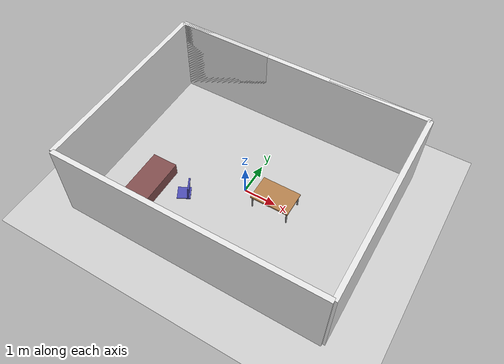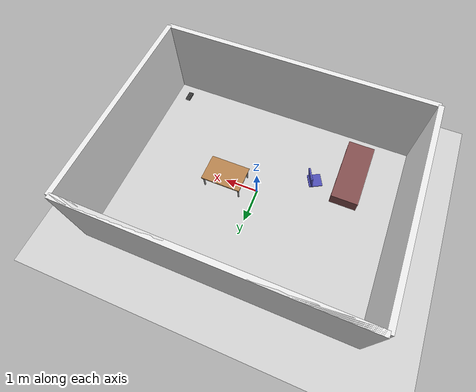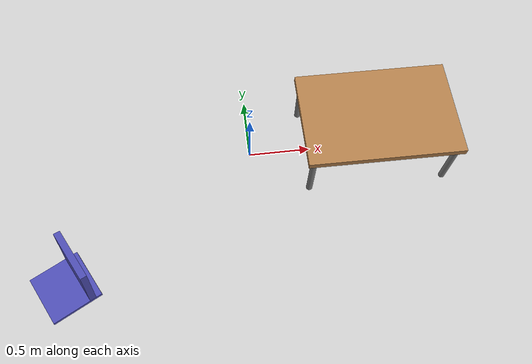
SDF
<?xml version="1.0" ?>
<sdf version="1.7">
  <world name="sweeping_robot_world">

    <physics type="ode">
      <real_time_update_rate>1000</real_time_update_rate>
      <max_step_size>0.001</max_step_size>
      <real_time_factor>1</real_time_factor>
      <ode>
        <solver>
          <type>quick</type>
          <iters>50</iters>
          <precon_iters>0</precon_iters>
          <sor>1.3</sor>
          <use_dynamic_moi_rescaling>false</use_dynamic_moi_rescaling>
        </solver>
        <constraints>
          <cfm>0.0</cfm>
          <erp>0.2</erp>
          <contact_max_correcting_vel>100</contact_max_correcting_vel>
          <contact_surface_layer>0.001</contact_surface_layer>
        </constraints>
      </ode>
    </physics>

    <scene>
      <ambient>0.4 0.4 0.4 1.0</ambient>
      <background>0.7 0.7 0.7 1.0</background>
      <shadows>true</shadows>
    </scene>

    <gui fullscreen="0">
      <camera name="user_camera">
        <pose>4.0 3.0 2.5 0 0.3 2.4</pose>
        <view_controller>orbit</view_controller>
      </camera>
    </gui>

    <!-- Global light -->
    <light type="directional" name="sun">
      <pose>0 0 10 0 0 0</pose>
      <diffuse>0.8 0.8 0.8 1.0</diffuse>
      <specular>0.2 0.2 0.2 1.0</specular>
      <direction>-0.5 0.1 -1.0</direction>
      <cast_shadows>true</cast_shadows>
    </light>

    <!-- Ground plane -->
    <include>
      <uri>model://ground_plane</uri>
      <pose>0 0 0 0 0 0</pose>
    </include>

    <!-- ==================== ROOM STRUCTURE ==================== -->

    <!-- Room dimensions: 8m x 6m with 2.5m ceiling -->

    <!-- Wall 1: Front wall (y = 3) -->
    <model name="wall_front">
      <pose>0 3.0 1.25 0 0 0</pose>
      <static>true</static>
      <link name="wall">
        <collision name="collision">
          <geometry>
            <box>
              <size>8.0 0.15 2.5</size>
            </box>
          </geometry>
        </collision>
        <visual name="visual">
          <geometry>
            <box>
              <size>8.0 0.15 2.5</size>
            </box>
          </geometry>
          <material>
            <ambient>0.8 0.8 0.8 1.0</ambient>
            <diffuse>0.9 0.9 0.9 1.0</diffuse>
          </material>
        </visual>
      </link>
    </model>

    <!-- Wall 2: Back wall (y = -3) -->
    <model name="wall_back">
      <pose>0 -3.0 1.25 0 0 0</pose>
      <static>true</static>
      <link name="wall">
        <collision name="collision">
          <geometry>
            <box>
              <size>8.0 0.15 2.5</size>
            </box>
          </geometry>
        </collision>
        <visual name="visual">
          <geometry>
            <box>
              <size>8.0 0.15 2.5</size>
            </box>
          </geometry>
          <material>
            <ambient>0.8 0.8 0.8 1.0</ambient>
            <diffuse>0.9 0.9 0.9 1.0</diffuse>
          </material>
        </visual>
      </link>
    </model>

    <!-- Wall 3: Left wall (x = -4) -->
    <model name="wall_left">
      <pose>-4.0 0 1.25 0 0 1.5708</pose>
      <static>true</static>
      <link name="wall">
        <collision name="collision">
          <geometry>
            <box>
              <size>6.0 0.15 2.5</size>
            </box>
          </geometry>
        </collision>
        <visual name="visual">
          <geometry>
            <box>
              <size>6.0 0.15 2.5</size>
            </box>
          </geometry>
          <material>
            <ambient>0.8 0.8 0.8 1.0</ambient>
            <diffuse>0.9 0.9 0.9 1.0</diffuse>
          </material>
        </visual>
      </link>
    </model>

    <!-- Wall 4: Right wall (x = 4) -->
    <model name="wall_right">
      <pose>4.0 0 1.25 0 0 1.5708</pose>
      <static>true</static>
      <link name="wall">
        <collision name="collision">
          <geometry>
            <box>
              <size>6.0 0.15 2.5</size>
            </box>
          </geometry>
        </collision>
        <visual name="visual">
          <geometry>
            <box>
              <size>6.0 0.15 2.5</size>
            </box>
          </geometry>
          <material>
            <ambient>0.8 0.8 0.8 1.0</ambient>
            <diffuse>0.9 0.9 0.9 1.0</diffuse>
          </material>
        </visual>
      </link>
    </model>

    <!-- Doorway opening in front wall (1.0m wide, centered) -->
    <!-- Note: Using two wall segments to create a gap -->

    <!-- Wall front-left section -->
    <model name="wall_front_left">
      <pose>-2.5 3.0 1.25 0 0 0</pose>
      <static>true</static>
      <link name="wall">
        <collision name="collision">
          <geometry>
            <box>
              <size>3.0 0.15 2.5</size>
            </box>
          </geometry>
        </collision>
        <visual name="visual">
          <geometry>
            <box>
              <size>3.0 0.15 2.5</size>
            </box>
          </geometry>
          <material>
            <ambient>0.7 0.7 0.7 1.0</ambient>
            <diffuse>0.85 0.85 0.85 1.0</diffuse>
          </material>
        </visual>
      </link>
    </model>

    <!-- Wall front-right section -->
    <model name="wall_front_right">
      <pose>2.5 3.0 1.25 0 0 0</pose>
      <static>true</static>
      <link name="wall">
        <collision name="collision">
          <geometry>
            <box>
              <size>3.0 0.15 2.5</size>
            </box>
          </geometry>
        </collision>
        <visual name="visual">
          <geometry>
            <box>
              <size>3.0 0.15 2.5</size>
            </box>
          </geometry>
          <material>
            <ambient>0.7 0.7 0.7 1.0</ambient>
            <diffuse>0.85 0.85 0.85 1.0</diffuse>
          </material>
        </visual>
      </link>
    </model>

    <!-- ==================== FURNITURE ==================== -->

    <!-- Table (center of room) -->
    <model name="table">
      <pose>1.0 0 0.45 0 0 0</pose>
      <static>true</static>
      <link name="table_top">
        <collision name="collision">
          <geometry>
            <box>
              <size>1.2 0.8 0.05</size>
            </box>
          </geometry>
        </collision>
        <visual name="visual">
          <geometry>
            <box>
              <size>1.2 0.8 0.05</size>
            </box>
          </geometry>
          <material>
            <ambient>0.6 0.4 0.2 1.0</ambient>
            <diffuse>0.7 0.5 0.3 1.0</diffuse>
          </material>
        </visual>
      </link>
      <link name="leg_1">
        <pose>-0.55 -0.35 -0.40 0 0 0</pose>
        <collision name="collision">
          <geometry>
            <cylinder>
              <radius>0.025</radius>
              <length>0.75</length>
            </cylinder>
          </geometry>
        </collision>
        <visual name="visual">
          <geometry>
            <cylinder>
              <radius>0.025</radius>
              <length>0.75</length>
            </cylinder>
          </geometry>
          <material>
            <ambient>0.4 0.4 0.4 1.0</ambient>
            <diffuse>0.5 0.5 0.5 1.0</diffuse>
          </material>
        </visual>
      </link>
      <link name="leg_2">
        <pose>0.55 -0.35 -0.40 0 0 0</pose>
        <collision name="collision">
          <geometry>
            <cylinder>
              <radius>0.025</radius>
              <length>0.75</length>
            </cylinder>
          </geometry>
        </collision>
        <visual name="visual">
          <geometry>
            <cylinder>
              <radius>0.025</radius>
              <length>0.75</length>
            </cylinder>
          </geometry>
          <material>
            <ambient>0.4 0.4 0.4 1.0</ambient>
            <diffuse>0.5 0.5 0.5 1.0</diffuse>
          </material>
        </visual>
      </link>
      <link name="leg_3">
        <pose>-0.55 0.35 -0.40 0 0 0</pose>
        <collision name="collision">
          <geometry>
            <cylinder>
              <radius>0.025</radius>
              <length>0.75</length>
            </cylinder>
          </geometry>
        </collision>
        <visual name="visual">
          <geometry>
            <cylinder>
              <radius>0.025</radius>
              <length>0.75</length>
            </cylinder>
          </geometry>
          <material>
            <ambient>0.4 0.4 0.4 1.0</ambient>
            <diffuse>0.5 0.5 0.5 1.0</diffuse>
          </material>
        </visual>
      </link>
      <link name="leg_4">
        <pose>0.55 0.35 -0.40 0 0 0</pose>
        <collision name="collision">
          <geometry>
            <cylinder>
              <radius>0.025</radius>
              <length>0.75</length>
            </cylinder>
          </geometry>
        </collision>
        <visual name="visual">
          <geometry>
            <cylinder>
              <radius>0.025</radius>
              <length>0.75</length>
            </cylinder>
          </geometry>
          <material>
            <ambient>0.4 0.4 0.4 1.0</ambient>
            <diffuse>0.5 0.5 0.5 1.0</diffuse>
          </material>
        </visual>
      </link>
      <joint name="table_top_leg_1" type="fixed">
        <parent>table_top</parent>
        <child>leg_1</child>
      </joint>
      <joint name="table_top_leg_2" type="fixed">
        <parent>table_top</parent>
        <child>leg_2</child>
      </joint>
      <joint name="table_top_leg_3" type="fixed">
        <parent>table_top</parent>
        <child>leg_3</child>
      </joint>
      <joint name="table_top_leg_4" type="fixed">
        <parent>table_top</parent>
        <child>leg_4</child>
      </joint>
    </model>

    <!-- Chair -->
    <model name="chair">
      <pose>-1.5 -1.0 0.0 0 0 0.5</pose>
      <static>true</static>
      <link name="seat">
        <collision name="collision">
          <geometry>
            <box>
              <size>0.4 0.4 0.05</size>
            </box>
          </geometry>
        </collision>
        <visual name="visual">
          <geometry>
            <box>
              <size>0.4 0.4 0.05</size>
            </box>
          </geometry>
          <material>
            <ambient>0.2 0.2 0.6 1.0</ambient>
            <diffuse>0.3 0.3 0.7 1.0</diffuse>
          </material>
        </visual>
      </link>
      <link name="back">
        <pose>0.15 0 0.25 0 0.1 0</pose>
        <collision name="collision">
          <geometry>
            <box>
              <size>0.05 0.4 0.45</size>
            </box>
          </geometry>
        </collision>
        <visual name="visual">
          <geometry>
            <box>
              <size>0.05 0.4 0.45</size>
            </box>
          </geometry>
          <material>
            <ambient>0.2 0.2 0.6 1.0</ambient>
            <diffuse>0.3 0.3 0.7 1.0</diffuse>
          </material>
        </visual>
      </link>
      <link name="leg_1">
        <pose>-0.15 -0.15 -0.25 0 0 0</pose>
        <collision name="collision">
          <geometry>
            <cylinder>
              <radius>0.02</radius>
              <length>0.45</length>
            </cylinder>
          </geometry>
        </collision>
        <visual name="visual">
          <geometry>
            <cylinder>
              <radius>0.02</radius>
              <length>0.45</length>
            </cylinder>
          </geometry>
          <material>
            <ambient>0.5 0.5 0.5 1.0</ambient>
            <diffuse>0.6 0.6 0.6 1.0</diffuse>
          </material>
        </visual>
      </link>
      <link name="leg_2">
        <pose>0.15 -0.15 -0.25 0 0 0</pose>
        <collision name="collision">
          <geometry>
            <cylinder>
              <radius>0.02</radius>
              <length>0.45</length>
            </cylinder>
          </geometry>
        </collision>
        <visual name="visual">
          <geometry>
            <cylinder>
              <radius>0.02</radius>
              <length>0.45</length>
            </cylinder>
          </geometry>
          <material>
            <ambient>0.5 0.5 0.5 1.0</ambient>
            <diffuse>0.6 0.6 0.6 1.0</diffuse>
          </material>
        </visual>
      </link>
      <link name="leg_3">
        <pose>-0.15 0.15 -0.25 0 0 0</pose>
        <collision name="collision">
          <geometry>
            <cylinder>
              <radius>0.02</radius>
              <length>0.45</length>
            </cylinder>
          </geometry>
        </collision>
        <visual name="visual">
          <geometry>
            <cylinder>
              <radius>0.02</radius>
              <length>0.45</length>
            </cylinder>
          </geometry>
          <material>
            <ambient>0.5 0.5 0.5 1.0</ambient>
            <diffuse>0.6 0.6 0.6 1.0</diffuse>
          </material>
        </visual>
      </link>
      <link name="leg_4">
        <pose>0.15 0.15 -0.25 0 0 0</pose>
        <collision name="collision">
          <geometry>
            <cylinder>
              <radius>0.02</radius>
              <length>0.45</length>
            </cylinder>
          </geometry>
        </collision>
        <visual name="visual">
          <geometry>
            <cylinder>
              <radius>0.02</radius>
              <length>0.45</length>
            </cylinder>
          </geometry>
          <material>
            <ambient>0.5 0.5 0.5 1.0</ambient>
            <diffuse>0.6 0.6 0.6 1.0</diffuse>
          </material>
        </visual>
      </link>
      <joint name="seat_back" type="fixed">
        <parent>seat</parent>
        <child>back</child>
      </joint>
      <joint name="seat_leg_1" type="fixed">
        <parent>seat</parent>
        <child>leg_1</child>
      </joint>
      <joint name="seat_leg_2" type="fixed">
        <parent>seat</parent>
        <child>leg_2</child>
      </joint>
      <joint name="seat_leg_3" type="fixed">
        <parent>seat</parent>
        <child>leg_3</child>
      </joint>
      <joint name="seat_leg_4" type="fixed">
        <parent>seat</parent>
        <child>leg_4</child>
      </joint>
    </model>

    <!-- Sofa -->
    <model name="sofa">
      <pose>-2.5 -1.5 0.2 0 0 1.5708</pose>
      <static>true</static>
      <link name="sofa_body">
        <collision name="collision">
          <geometry>
            <box>
              <size>2.0 0.8 0.4</size>
            </box>
          </geometry>
        </collision>
        <visual name="visual">
          <geometry>
            <box>
              <size>2.0 0.8 0.4</size>
            </box>
          </geometry>
          <material>
            <ambient>0.4 0.2 0.2 1.0</ambient>
            <diffuse>0.5 0.3 0.3 1.0</diffuse>
          </material>
        </visual>
      </link>
    </model>

    <!-- ==================== CHARGING DOCK ==================== -->
    <model name="charging_dock">
      <pose>3.5 -2.5 0 0 0 0</pose>
      <static>true</static>
      <link name="dock_base">
        <collision name="collision">
          <geometry>
            <box>
              <size>0.15 0.3 0.08</size>
            </box>
          </geometry>
        </collision>
        <visual name="visual">
          <geometry>
            <box>
              <size>0.15 0.3 0.08</size>
            </box>
          </geometry>
          <material>
            <ambient>0.1 0.1 0.1 1.0</ambient>
            <diffuse>0.2 0.2 0.2 1.0</diffuse>
          </material>
        </visual>
      </link>
      <link name="dock_ramp">
        <pose>0.0 -0.15 0.0 0.05 0 0</pose>
        <collision name="collision">
          <geometry>
            <box>
              <size>0.12 0.05 0.02</size>
            </box>
          </geometry>
        </collision>
        <visual name="visual">
          <geometry>
            <box>
              <size>0.12 0.05 0.02</size>
            </box>
          </geometry>
          <material>
            <ambient>0.1 0.1 0.1 1.0</ambient>
            <diffuse>0.2 0.2 0.2 1.0</diffuse>
          </material>
        </visual>
      </link>
      <link name="ir_beacon">
        <pose>0.0 0.0 0.06 0 0 0</pose>
        <visual name="visual">
          <geometry>
            <sphere>
              <radius>0.015</radius>
            </sphere>
          </geometry>
          <material>
            <emissive>0.8 0.0 0.0 1.0</emissive>
          </material>
        </visual>
      </link>
      <joint name="dock_base_ramp" type="fixed">
        <parent>dock_base</parent>
        <child>dock_ramp</child>
      </joint>
      <joint name="dock_base_beacon" type="fixed">
        <parent>dock_base</parent>
        <child>ir_beacon</child>
      </joint>
    </model>

    <!-- ==================== PLUGINS ==================== -->

    <!-- Differential drive plugin for the robot -->
    <!-- Note: The robot model is loaded separately via robot.sdf -->

  </world>
</sdf>
